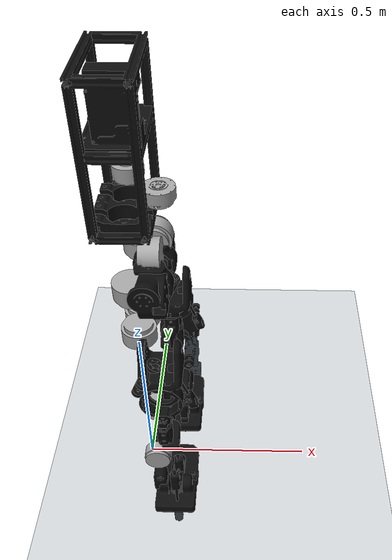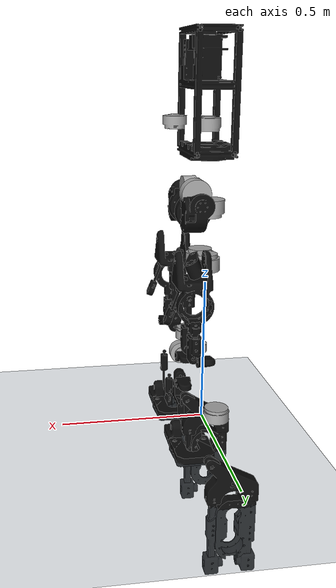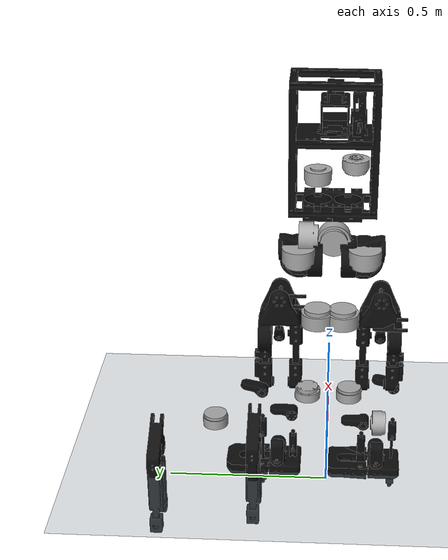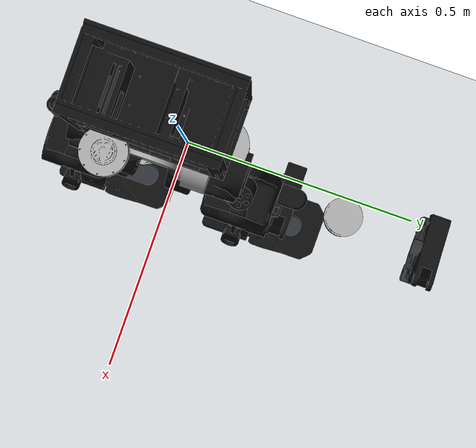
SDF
<?xml version="1.0"?>
<sdf version="1.9">
  <world name="robonex_world">
    <physics name="1ms" type="dart">
      <max_step_size>0.001</max_step_size>
      <real_time_factor>1.0</real_time_factor>
    </physics>
    <plugin filename="ignition-gazebo-physics-system" name="ignition::gazebo::systems::Physics"/>
    <plugin filename="ignition-gazebo-user-commands-system" name="ignition::gazebo::systems::UserCommands"/>
    <plugin filename="ignition-gazebo-scene-broadcaster-system" name="ignition::gazebo::systems::SceneBroadcaster"/>
    <plugin filename="ignition-gazebo-contact-system" name="ignition::gazebo::systems::Contact"/>
    <plugin filename="ignition-gazebo-imu-system" name="ignition::gazebo::systems::Imu"/>
    <gravity>0 0 -9.81</gravity>

    <light type="directional" name="sun">
      <pose>0 0 10 0 0 0</pose>
      <direction>-0.3 0.2 -0.9</direction>
      <diffuse>1 1 1 1</diffuse>
      <specular>0.2 0.2 0.2 1</specular>
      <cast_shadows>true</cast_shadows>
    </light>

    <model name="ground_plane">
      <static>true</static>
      <link name="link">
        <collision name="collision">
          <geometry><plane><normal>0 0 1</normal><size>50 50</size></plane></geometry>
          <surface><friction><ode>
            <mu>0.6</mu><mu2>0.6</mu2>
          </ode></friction></surface>
        </collision>
        <visual name="visual">
          <geometry><plane><normal>0 0 1</normal><size>50 50</size></plane></geometry>
          <material>
            <ambient>0.4 0.45 0.5 1</ambient>
            <diffuse>0.5 0.55 0.6 1</diffuse>
          </material>
        </visual>
      </link>
    </model>

  <model name="robonex">
    <pose>0 0 1.0789 0 0 0</pose>
    <self_collide>false</self_collide>

    <link name="base_link">
      <inertial>
        <pose>0.032843 0.000297 -0.045593 0 0 0</pose>
        <mass>6.80147</mass>
        <inertia>
          <ixx>0.17694424</ixx>
          <ixy>-5.475e-05</ixy>
          <ixz>0.01914405</ixz>
          <iyy>0.14872054</iyy>
          <iyz>-0.00012648</iyz>
          <izz>0.08710167</izz>
        </inertia>
      </inertial>
      <visual name="base_link_visual_0">
        <pose>0 0 0 0 0 0</pose>
        <geometry><mesh>
          <uri>../meshes/base_link.stl</uri>
          <scale>0.001 0.001 0.001</scale>
        </mesh></geometry>
        <material>
          <ambient>0.025 0.025 0.025 1</ambient>
          <diffuse>0.05 0.05 0.05 1</diffuse>
          <specular>0.1 0.1 0.1 1</specular>
        </material>
      </visual>
      <visual name="base_link_visual_1">
        <pose>0.060424 -0.05 -0.17975 -3.14159 0 -1.65806</pose>
        <geometry><mesh>
          <uri>../meshes/rs02_r_hip_yaw.stl</uri>
          <scale>0.001 0.001 0.001</scale>
        </mesh></geometry>
        <material>
          <ambient>0.3235 0.3235 0.3235 1</ambient>
          <diffuse>0.647 0.647 0.647 1</diffuse>
          <specular>0.1 0.1 0.1 1</specular>
        </material>
      </visual>
      <visual name="base_link_visual_2">
        <pose>0.060424 0.05 -0.17975 -3.14159 0 -1.65806</pose>
        <geometry><mesh>
          <uri>../meshes/rs02_l_hip_yaw.stl</uri>
          <scale>0.001 0.001 0.001</scale>
        </mesh></geometry>
        <material>
          <ambient>0.3235 0.3235 0.3235 1</ambient>
          <diffuse>0.647 0.647 0.647 1</diffuse>
          <specular>0.1 0.1 0.1 1</specular>
        </material>
      </visual>
      <collision name="base_link_collision">
        <pose>0 0 -0.0005 0 0 0</pose>
        <geometry><box><size>0.2608 0.35 0.4039</size></box></geometry>
        <surface><friction><ode>
          <mu>1</mu><mu2>1</mu2>
        </ode></friction></surface>
      </collision>
      <sensor name="imu" type="imu">
        <always_on>1</always_on>
        <update_rate>200</update_rate>
        <topic>/robonex/imu</topic>
        <pose>0 0 0 0 0 0</pose>
      </sensor>
    </link>

    <link name="l_hip_yaw_link">
      <pose relative_to="base_link">0.060424 0.05 -0.20245 0 0 0</pose>
      <inertial>
        <pose>-3.8e-05 0.023069 -0.059394 0 0 0</pose>
        <mass>0.9768</mass>
        <inertia>
          <ixx>0.00108483</ixx>
          <ixy>-7.1e-07</ixy>
          <ixz>-7.1e-07</ixz>
          <iyy>0.00144231</iyy>
          <iyz>2.234e-05</iyz>
          <izz>0.001013</izz>
        </inertia>
      </inertial>
      <visual name="l_hip_yaw_link_visual_0">
        <pose>2e-06 0.0001 -0.059 0 0 3.14159</pose>
        <geometry><mesh>
          <uri>../meshes/l_hip_yaw_link.stl</uri>
          <scale>0.001 0.001 0.001</scale>
        </mesh></geometry>
        <material>
          <ambient>0.025 0.025 0.025 1</ambient>
          <diffuse>0.05 0.05 0.05 1</diffuse>
          <specular>0.1 0.1 0.1 1</specular>
        </material>
      </visual>
      <visual name="l_hip_yaw_link_visual_1">
        <pose>2e-06 0.0194 -0.06001 0 -1.5708 -1.5708</pose>
        <geometry><mesh>
          <uri>../meshes/rs03_l_hip_pitch.stl</uri>
          <scale>0.001 0.001 0.001</scale>
        </mesh></geometry>
        <material>
          <ambient>0.3235 0.3235 0.3235 1</ambient>
          <diffuse>0.647 0.647 0.647 1</diffuse>
          <specular>0.1 0.1 0.1 1</specular>
        </material>
      </visual>
      <collision name="l_hip_yaw_link_collision">
        <pose>0 0.0013 -0.059 0 0 0</pose>
        <geometry><box><size>0.115 0.0927 0.118</size></box></geometry>
        <surface><friction><ode>
          <mu>1</mu><mu2>1</mu2>
        </ode></friction></surface>
      </collision>
    </link>

    <link name="r_hip_yaw_link">
      <pose relative_to="base_link">0.060424 -0.05 -0.20245 0 0 0</pose>
      <inertial>
        <pose>3.8e-05 -0.023069 -0.059394 0 0 0</pose>
        <mass>0.9768</mass>
        <inertia>
          <ixx>0.00108483</ixx>
          <ixy>-7.1e-07</ixy>
          <ixz>7.1e-07</ixz>
          <iyy>0.00144231</iyy>
          <iyz>-2.234e-05</iyz>
          <izz>0.001013</izz>
        </inertia>
      </inertial>
      <visual name="r_hip_yaw_link_visual_0">
        <pose>-2e-06 -0.0001 -0.059 0 0 0</pose>
        <geometry><mesh>
          <uri>../meshes/r_hip_yaw_link.stl</uri>
          <scale>0.001 0.001 0.001</scale>
        </mesh></geometry>
        <material>
          <ambient>0.025 0.025 0.025 1</ambient>
          <diffuse>0.05 0.05 0.05 1</diffuse>
          <specular>0.1 0.1 0.1 1</specular>
        </material>
      </visual>
      <visual name="r_hip_yaw_link_visual_1">
        <pose>-2e-06 -0.0194 -0.06001 0 -1.5708 1.5708</pose>
        <geometry><mesh>
          <uri>../meshes/rs03_r_hip_pitch.stl</uri>
          <scale>0.001 0.001 0.001</scale>
        </mesh></geometry>
        <material>
          <ambient>0.3235 0.3235 0.3235 1</ambient>
          <diffuse>0.647 0.647 0.647 1</diffuse>
          <specular>0.1 0.1 0.1 1</specular>
        </material>
      </visual>
      <collision name="r_hip_yaw_link_collision">
        <pose>0 -0.0013 -0.059 0 0 0</pose>
        <geometry><box><size>0.115 0.0927 0.118</size></box></geometry>
        <surface><friction><ode>
          <mu>1</mu><mu2>1</mu2>
        </ode></friction></surface>
      </collision>
    </link>

    <link name="l_hip_pitch_link">
      <pose relative_to="l_hip_yaw_link">1e-06 0.0477 -0.0605 0 0 0</pose>
      <inertial>
        <pose>-0.003785 0.060976 -0.032577 0 0 0</pose>
        <mass>1.04436</mass>
        <inertia>
          <ixx>0.00161401</ixx>
          <ixy>9.18e-06</ixy>
          <ixz>-6.72e-06</ixz>
          <iyy>0.00123883</iyy>
          <iyz>6.937e-05</iyz>
          <izz>0.00118137</izz>
        </inertia>
      </inertial>
      <visual name="l_hip_pitch_link_visual_0">
        <pose>-0.00455 0.0599 -0.02575 0 0 3.14159</pose>
        <geometry><mesh>
          <uri>../meshes/l_hip_pitch_link.stl</uri>
          <scale>0.001 0.001 0.001</scale>
        </mesh></geometry>
        <material>
          <ambient>0.025 0.025 0.025 1</ambient>
          <diffuse>0.05 0.05 0.05 1</diffuse>
          <specular>0.1 0.1 0.1 1</specular>
        </material>
      </visual>
      <visual name="l_hip_pitch_link_visual_1">
        <pose>-0.0058 0.0623 -0.03351 0 -1.5708 -3.14159</pose>
        <geometry><mesh>
          <uri>../meshes/rs03_l_hip_roll.stl</uri>
          <scale>0.001 0.001 0.001</scale>
        </mesh></geometry>
        <material>
          <ambient>0.3235 0.3235 0.3235 1</ambient>
          <diffuse>0.647 0.647 0.647 1</diffuse>
          <specular>0.1 0.1 0.1 1</specular>
        </material>
      </visual>
      <collision name="l_hip_pitch_link_collision">
        <pose>-0.0046 0.0599 -0.0258 0 0 0</pose>
        <geometry><box><size>0.0891 0.1198 0.1315</size></box></geometry>
        <surface><friction><ode>
          <mu>1</mu><mu2>1</mu2>
        </ode></friction></surface>
      </collision>
    </link>

    <link name="r_hip_pitch_link">
      <pose relative_to="r_hip_yaw_link">-1e-06 -0.0477 -0.0605 0 0 0</pose>
      <inertial>
        <pose>-0.003774 -0.061283 -0.032564 0 0 0</pose>
        <mass>1.04436</mass>
        <inertia>
          <ixx>0.00161565</ixx>
          <ixy>-8.22e-06</ixy>
          <ixz>-6.63e-06</ixz>
          <iyy>0.00123875</iyy>
          <iyz>-6.896e-05</iyz>
          <izz>0.00118221</izz>
        </inertia>
      </inertial>
      <visual name="r_hip_pitch_link_visual_0">
        <pose>-0.00455 -0.0601 -0.02575 0 0 -3.14159</pose>
        <geometry><mesh>
          <uri>../meshes/r_hip_pitch_link.stl</uri>
          <scale>0.001 0.001 0.001</scale>
        </mesh></geometry>
        <material>
          <ambient>0.025 0.025 0.025 1</ambient>
          <diffuse>0.05 0.05 0.05 1</diffuse>
          <specular>0.1 0.1 0.1 1</specular>
        </material>
      </visual>
      <visual name="r_hip_pitch_link_visual_1">
        <pose>-0.0058 -0.0627 -0.03351 0 -1.5708 -3.14159</pose>
        <geometry><mesh>
          <uri>../meshes/rs03_r_hip_roll.stl</uri>
          <scale>0.001 0.001 0.001</scale>
        </mesh></geometry>
        <material>
          <ambient>0.3235 0.3235 0.3235 1</ambient>
          <diffuse>0.647 0.647 0.647 1</diffuse>
          <specular>0.1 0.1 0.1 1</specular>
        </material>
      </visual>
      <collision name="r_hip_pitch_link_collision">
        <pose>-0.0046 -0.0601 -0.0257 0 0 0</pose>
        <geometry><box><size>0.0891 0.1202 0.1315</size></box></geometry>
        <surface><friction><ode>
          <mu>1</mu><mu2>1</mu2>
        </ode></friction></surface>
      </collision>
    </link>

    <link name="l_hip_roll_link">
      <pose relative_to="l_hip_pitch_link">0.0225 0.0623 -0.034 0 0 0</pose>
      <inertial>
        <pose>-0.034473 -0.032586 -0.198268 0 0 0</pose>
        <mass>1.71574</mass>
        <inertia>
          <ixx>0.01832064</ixx>
          <ixy>-1.851e-05</ixy>
          <ixz>-6.908e-05</ixz>
          <iyy>0.01711211</iyy>
          <iyz>-0.00294612</iyz>
          <izz>0.00412151</izz>
        </inertia>
      </inertial>
      <visual name="l_hip_roll_link_visual_0">
        <pose>-0.0348 -0.007 -0.16 0 0 -3.14159</pose>
        <geometry><mesh>
          <uri>../meshes/l_hip_roll_link.stl</uri>
          <scale>0.001 0.001 0.001</scale>
        </mesh></geometry>
        <material>
          <ambient>0.025 0.025 0.025 1</ambient>
          <diffuse>0.05 0.05 0.05 1</diffuse>
          <specular>0.1 0.1 0.1 1</specular>
        </material>
      </visual>
      <visual name="l_hip_roll_link_visual_1">
        <pose>-0.03431 -0.0603 -0.255 -1.5708 0 0</pose>
        <geometry><mesh>
          <uri>../meshes/rs03_l_knee.stl</uri>
          <scale>0.001 0.001 0.001</scale>
        </mesh></geometry>
        <material>
          <ambient>0.3235 0.3235 0.3235 1</ambient>
          <diffuse>0.647 0.647 0.647 1</diffuse>
          <specular>0.1 0.1 0.1 1</specular>
        </material>
      </visual>
      <collision name="l_hip_roll_link_collision">
        <pose>-0.0348 -0.011 -0.16 0 0 0</pose>
        <geometry><box><size>0.1147 0.1553 0.3999</size></box></geometry>
        <surface><friction><ode>
          <mu>1</mu><mu2>1</mu2>
        </ode></friction></surface>
      </collision>
    </link>

    <link name="r_hip_roll_link">
      <pose relative_to="r_hip_pitch_link">0.0225 -0.0627 -0.034 0 0 0</pose>
      <inertial>
        <pose>-0.034561 0.0326 -0.198312 0 0 0</pose>
        <mass>1.71574</mass>
        <inertia>
          <ixx>0.01832691</ixx>
          <ixy>2.205e-05</ixy>
          <ixz>-7.902e-05</ixz>
          <iyy>0.01712084</iyy>
          <iyz>0.00294902</iyz>
          <izz>0.00411921</izz>
        </inertia>
      </inertial>
      <visual name="r_hip_roll_link_visual_0">
        <pose>-0.0348 0.007 -0.16 0 0 -3.14159</pose>
        <geometry><mesh>
          <uri>../meshes/r_hip_roll_link.stl</uri>
          <scale>0.001 0.001 0.001</scale>
        </mesh></geometry>
        <material>
          <ambient>0.025 0.025 0.025 1</ambient>
          <diffuse>0.05 0.05 0.05 1</diffuse>
          <specular>0.1 0.1 0.1 1</specular>
        </material>
      </visual>
      <visual name="r_hip_roll_link_visual_1">
        <pose>-0.03431 0.0603 -0.255 1.5708 0 0</pose>
        <geometry><mesh>
          <uri>../meshes/rs03_r_knee.stl</uri>
          <scale>0.001 0.001 0.001</scale>
        </mesh></geometry>
        <material>
          <ambient>0.3235 0.3235 0.3235 1</ambient>
          <diffuse>0.647 0.647 0.647 1</diffuse>
          <specular>0.1 0.1 0.1 1</specular>
        </material>
      </visual>
      <collision name="r_hip_roll_link_collision">
        <pose>-0.0348 0.011 -0.16 0 0 0</pose>
        <geometry><box><size>0.1147 0.1553 0.3999</size></box></geometry>
        <surface><friction><ode>
          <mu>1</mu><mu2>1</mu2>
        </ode></friction></surface>
      </collision>
    </link>

    <link name="l_knee_crank_link">
      <pose relative_to="l_hip_roll_link">-0.0348 -0.032 -0.255 0 0 0</pose>
      <inertial>
        <pose>0.013738 0.029543 0.030625 0 0 0</pose>
        <mass>0.09538</mass>
        <inertia>
          <ixx>0.0001081</ixx>
          <ixy>-2.41e-06</ixy>
          <ixz>-3.391e-05</ixz>
          <iyy>0.00011887</iyy>
          <iyz>-5.38e-06</iyz>
          <izz>4.67e-05</izz>
        </inertia>
      </inertial>
      <visual name="l_knee_crank_link_visual_0">
        <pose>0.019334 0.026 0.041464 1.13446 0 -1.5708</pose>
        <geometry><mesh>
          <uri>../meshes/l_knee_crank_link.stl</uri>
          <scale>0.001 0.001 0.001</scale>
        </mesh></geometry>
        <material>
          <ambient>0.025 0.025 0.025 1</ambient>
          <diffuse>0.05 0.05 0.05 1</diffuse>
          <specular>0.1 0.1 0.1 1</specular>
        </material>
      </visual>
    </link>

    <link name="r_knee_crank_link">
      <pose relative_to="r_hip_roll_link">-0.0348 0.032 -0.255 0 0 0</pose>
      <inertial>
        <pose>0.013738 -0.029543 0.030625 0 0 0</pose>
        <mass>0.09538</mass>
        <inertia>
          <ixx>0.0001081</ixx>
          <ixy>2.41e-06</ixy>
          <ixz>-3.391e-05</ixz>
          <iyy>0.00011887</iyy>
          <iyz>5.38e-06</iyz>
          <izz>4.67e-05</izz>
        </inertia>
      </inertial>
      <visual name="r_knee_crank_link_visual_0">
        <pose>0.019335 -0.026 0.041464 1.13446 0 -1.5708</pose>
        <geometry><mesh>
          <uri>../meshes/r_knee_crank_link.stl</uri>
          <scale>0.001 0.001 0.001</scale>
        </mesh></geometry>
        <material>
          <ambient>0.025 0.025 0.025 1</ambient>
          <diffuse>0.05 0.05 0.05 1</diffuse>
          <specular>0.1 0.1 0.1 1</specular>
        </material>
      </visual>
    </link>

    <link name="l_knee_coupler_link">
      <pose relative_to="l_knee_crank_link">0.042262 0.021 0.090631 0 0 0</pose>
      <inertial>
        <pose>0.023792 0.01 -0.062632 0 0 0</pose>
        <mass>0.0579</mass>
        <inertia>
          <ixx>0.00016138</ixx>
          <ixy>0</ixy>
          <ixz>5.899e-05</ixz>
          <iyy>0.00018632</iyy>
          <iyz>0</iyz>
          <izz>2.851e-05</izz>
        </inertia>
      </inertial>
      <visual name="l_knee_coupler_link_visual_0">
        <pose>0.023792 0.01 -0.062633 0.363028 0 -1.5708</pose>
        <geometry><mesh>
          <uri>../meshes/l_knee_coupler_link.stl</uri>
          <scale>0.001 0.001 0.001</scale>
        </mesh></geometry>
        <material>
          <ambient>0.025 0.025 0.025 1</ambient>
          <diffuse>0.05 0.05 0.05 1</diffuse>
          <specular>0.1 0.1 0.1 1</specular>
        </material>
      </visual>
    </link>

    <link name="r_knee_coupler_link">
      <pose relative_to="r_knee_crank_link">0.042262 -0.021 0.090631 0 0 0</pose>
      <inertial>
        <pose>0.023792 -0.01 -0.062632 0 0 0</pose>
        <mass>0.0579</mass>
        <inertia>
          <ixx>0.00016138</ixx>
          <ixy>0</ixy>
          <ixz>5.899e-05</ixz>
          <iyy>0.00018632</iyy>
          <iyz>0</iyz>
          <izz>2.851e-05</izz>
        </inertia>
      </inertial>
      <visual name="r_knee_coupler_link_visual_0">
        <pose>0.023792 -0.01 -0.062633 -0.363028 0 1.5708</pose>
        <geometry><mesh>
          <uri>../meshes/r_knee_coupler_link.stl</uri>
          <scale>0.001 0.001 0.001</scale>
        </mesh></geometry>
        <material>
          <ambient>0.025 0.025 0.025 1</ambient>
          <diffuse>0.05 0.05 0.05 1</diffuse>
          <specular>0.1 0.1 0.1 1</specular>
        </material>
      </visual>
    </link>

    <link name="l_knee_link">
      <pose relative_to="l_hip_roll_link">-0.0348 -0.0255 -0.34 0 0 0</pose>
      <inertial>
        <pose>0.001621 0.025016 -0.172019 0 0 0</pose>
        <mass>1.71687</mass>
        <inertia>
          <ixx>0.01717778</ixx>
          <ixy>1.7e-07</ixy>
          <ixz>-0.00118827</ixz>
          <iyy>0.01952815</iyy>
          <iyz>-1.549e-05</iyz>
          <izz>0.00292332</izz>
        </inertia>
      </inertial>
      <visual name="l_knee_link_visual_0">
        <pose>0 0.42 -0.3696 0 0 0</pose>
        <geometry><mesh>
          <uri>../meshes/l_knee_link.stl</uri>
          <scale>0.001 0.001 0.001</scale>
        </mesh></geometry>
        <material>
          <ambient>0.025 0.025 0.025 1</ambient>
          <diffuse>0.05 0.05 0.05 1</diffuse>
          <specular>0.1 0.1 0.1 1</specular>
        </material>
      </visual>
      <visual name="l_knee_link_visual_1">
        <pose>0 0.0252 -0.1445 -1.5708 0 0</pose>
        <geometry><mesh>
          <uri>../meshes/rs02_l_ankle_a.stl</uri>
          <scale>0.001 0.001 0.001</scale>
        </mesh></geometry>
        <material>
          <ambient>0.3235 0.3235 0.3235 1</ambient>
          <diffuse>0.647 0.647 0.647 1</diffuse>
          <specular>0.1 0.1 0.1 1</specular>
        </material>
      </visual>
      <visual name="l_knee_link_visual_2">
        <pose>0 0.0248 -0.2555 1.5708 0 0</pose>
        <geometry><mesh>
          <uri>../meshes/rs02_l_ankle_b.stl</uri>
          <scale>0.001 0.001 0.001</scale>
        </mesh></geometry>
        <material>
          <ambient>0.3235 0.3235 0.3235 1</ambient>
          <diffuse>0.647 0.647 0.647 1</diffuse>
          <specular>0.1 0.1 0.1 1</specular>
        </material>
      </visual>
      <collision name="l_knee_link_collision">
        <pose>0.0027 0.025 -0.1525 0 0 0</pose>
        <geometry><box><size>0.2044 0.05 0.435</size></box></geometry>
        <surface><friction><ode>
          <mu>1</mu><mu2>1</mu2>
        </ode></friction></surface>
      </collision>
    </link>

    <link name="r_knee_link">
      <pose relative_to="r_hip_roll_link">-0.0348 0.0255 -0.34 0 0 0</pose>
      <inertial>
        <pose>0.001621 -0.025013 -0.172019 0 0 0</pose>
        <mass>1.71687</mass>
        <inertia>
          <ixx>0.01717476</ixx>
          <ixy>1.7e-06</ixy>
          <ixz>-0.00118827</ixz>
          <iyy>0.01952513</iyy>
          <iyz>2.224e-05</iyz>
          <izz>0.00292332</izz>
        </inertia>
      </inertial>
      <visual name="r_knee_link_visual_0">
        <pose>0 0.37 -0.32 0 0 0</pose>
        <geometry><mesh>
          <uri>../meshes/r_knee_link.stl</uri>
          <scale>0.001 0.001 0.001</scale>
        </mesh></geometry>
        <material>
          <ambient>0.025 0.025 0.025 1</ambient>
          <diffuse>0.05 0.05 0.05 1</diffuse>
          <specular>0.1 0.1 0.1 1</specular>
        </material>
      </visual>
      <visual name="r_knee_link_visual_1">
        <pose>0 -0.0252 -0.1445 1.5708 0 0</pose>
        <geometry><mesh>
          <uri>../meshes/rs02_r_ankle_a.stl</uri>
          <scale>0.001 0.001 0.001</scale>
        </mesh></geometry>
        <material>
          <ambient>0.3235 0.3235 0.3235 1</ambient>
          <diffuse>0.647 0.647 0.647 1</diffuse>
          <specular>0.1 0.1 0.1 1</specular>
        </material>
      </visual>
      <visual name="r_knee_link_visual_2">
        <pose>0 -0.0248 -0.2555 -1.5708 0 0</pose>
        <geometry><mesh>
          <uri>../meshes/rs02_r_ankle_b.stl</uri>
          <scale>0.001 0.001 0.001</scale>
        </mesh></geometry>
        <material>
          <ambient>0.3235 0.3235 0.3235 1</ambient>
          <diffuse>0.647 0.647 0.647 1</diffuse>
          <specular>0.1 0.1 0.1 1</specular>
        </material>
      </visual>
      <collision name="r_knee_link_collision">
        <pose>0.0027 -0.025 -0.1525 0 0 0</pose>
        <geometry><box><size>0.2044 0.05 0.435</size></box></geometry>
        <surface><friction><ode>
          <mu>1</mu><mu2>1</mu2>
        </ode></friction></surface>
      </collision>
    </link>

    <link name="l_ankle_crank_link_a">
      <pose relative_to="l_knee_link">0 0.0479 -0.1445 0 0 0</pose>
      <inertial>
        <pose>0.021493 0.024513 0.00427 0 0 0</pose>
        <mass>0.08456</mass>
        <inertia>
          <ixx>1.958e-05</ixx>
          <ixy>-3.25e-06</ixy>
          <ixz>-6.24e-06</ixz>
          <iyy>5.234e-05</iyy>
          <iyz>-6.5e-07</iyz>
          <izz>5.951e-05</izz>
        </inertia>
      </inertial>
      <visual name="l_ankle_crank_link_a_visual_0">
        <pose>0.026 0.0234 0 0 0 1.5708</pose>
        <geometry><mesh>
          <uri>../meshes/l_ankle_crank_link_a.stl</uri>
          <scale>0.001 0.001 0.001</scale>
        </mesh></geometry>
        <material>
          <ambient>0.025 0.025 0.025 1</ambient>
          <diffuse>0.05 0.05 0.05 1</diffuse>
          <specular>0.1 0.1 0.1 1</specular>
        </material>
      </visual>
    </link>

    <link name="l_ankle_crank_link_b">
      <pose relative_to="l_knee_link">0 0.0021 -0.2555 0 0 0</pose>
      <inertial>
        <pose>0.021493 -0.024513 0.00427 0 0 0</pose>
        <mass>0.08456</mass>
        <inertia>
          <ixx>1.958e-05</ixx>
          <ixy>3.25e-06</ixy>
          <ixz>-6.24e-06</ixz>
          <iyy>5.234e-05</iyy>
          <iyz>6.5e-07</iyz>
          <izz>5.951e-05</izz>
        </inertia>
      </inertial>
      <visual name="l_ankle_crank_link_b_visual_0">
        <pose>0.026 -0.0224 -1e-06 0 0 1.5708</pose>
        <geometry><mesh>
          <uri>../meshes/l_ankle_crank_link_b.stl</uri>
          <scale>0.001 0.001 0.001</scale>
        </mesh></geometry>
        <material>
          <ambient>0.025 0.025 0.025 1</ambient>
          <diffuse>0.05 0.05 0.05 1</diffuse>
          <specular>0.1 0.1 0.1 1</specular>
        </material>
      </visual>
    </link>

    <link name="r_ankle_crank_link_a">
      <pose relative_to="r_knee_link">0 -0.0021 -0.2555 0 0 0</pose>
      <inertial>
        <pose>0.021493 0.024513 0.00427 0 0 0</pose>
        <mass>0.08456</mass>
        <inertia>
          <ixx>1.958e-05</ixx>
          <ixy>-3.25e-06</ixy>
          <ixz>-6.24e-06</ixz>
          <iyy>5.234e-05</iyy>
          <iyz>-6.5e-07</iyz>
          <izz>5.951e-05</izz>
        </inertia>
      </inertial>
      <visual name="r_ankle_crank_link_a_visual_0">
        <pose>0.026 0.0234 0 0 0 1.5708</pose>
        <geometry><mesh>
          <uri>../meshes/r_ankle_crank_link_a.stl</uri>
          <scale>0.001 0.001 0.001</scale>
        </mesh></geometry>
        <material>
          <ambient>0.025 0.025 0.025 1</ambient>
          <diffuse>0.05 0.05 0.05 1</diffuse>
          <specular>0.1 0.1 0.1 1</specular>
        </material>
      </visual>
    </link>

    <link name="r_ankle_crank_link_b">
      <pose relative_to="r_knee_link">0 -0.0479 -0.1445 0 0 0</pose>
      <inertial>
        <pose>0.021493 -0.024513 0.00427 0 0 0</pose>
        <mass>0.08456</mass>
        <inertia>
          <ixx>1.958e-05</ixx>
          <ixy>3.25e-06</ixy>
          <ixz>-6.24e-06</ixz>
          <iyy>5.234e-05</iyy>
          <iyz>6.5e-07</iyz>
          <izz>5.951e-05</izz>
        </inertia>
      </inertial>
      <visual name="r_ankle_crank_link_b_visual_0">
        <pose>0.026 -0.0224 -1e-06 0 0 1.5708</pose>
        <geometry><mesh>
          <uri>../meshes/r_ankle_crank_link_b.stl</uri>
          <scale>0.001 0.001 0.001</scale>
        </mesh></geometry>
        <material>
          <ambient>0.025 0.025 0.025 1</ambient>
          <diffuse>0.05 0.05 0.05 1</diffuse>
          <specular>0.1 0.1 0.1 1</specular>
        </material>
      </visual>
    </link>

    <link name="l_ankle_coupler_link_a">
      <pose relative_to="l_ankle_crank_link_b">0.05 -0.0263 0 0 0 0</pose>
      <inertial>
        <pose>0 0 -0.0735 0 0 0</pose>
        <mass>0.0741</mass>
        <inertia>
          <ixx>0.0001211</ixx>
          <ixy>0</ixy>
          <ixz>0</ixz>
          <iyy>0.00012069</iyy>
          <iyz>0</iyz>
          <izz>6.8e-06</izz>
        </inertia>
      </inertial>
      <visual name="l_ankle_coupler_link_a_visual_0">
        <pose>0 0 -0.0735 0 0 0</pose>
        <geometry><mesh>
          <uri>../meshes/l_ankle_coupler_link_a.stl</uri>
          <scale>0.001 0.001 0.001</scale>
        </mesh></geometry>
        <material>
          <ambient>0.025 0.025 0.025 1</ambient>
          <diffuse>0.05 0.05 0.05 1</diffuse>
          <specular>0.1 0.1 0.1 1</specular>
        </material>
      </visual>
    </link>

    <link name="l_ankle_coupler_link_b">
      <pose relative_to="l_ankle_crank_link_a">0.05 0.0263 0 0 0 0</pose>
      <inertial>
        <pose>0 0 -0.129 0 0 0</pose>
        <mass>0.08512</mass>
        <inertia>
          <ixx>0.00066004</ixx>
          <ixy>0</ixy>
          <ixz>0</ixz>
          <iyy>0.00065964</iyy>
          <iyz>0</iyz>
          <izz>7.38e-06</izz>
        </inertia>
      </inertial>
      <visual name="l_ankle_coupler_link_b_visual_0">
        <pose>0 0 -0.129 0 0 0</pose>
        <geometry><mesh>
          <uri>../meshes/l_ankle_coupler_link_b.stl</uri>
          <scale>0.001 0.001 0.001</scale>
        </mesh></geometry>
        <material>
          <ambient>0.025 0.025 0.025 1</ambient>
          <diffuse>0.05 0.05 0.05 1</diffuse>
          <specular>0.1 0.1 0.1 1</specular>
        </material>
      </visual>
    </link>

    <link name="r_ankle_coupler_link_a">
      <pose relative_to="r_ankle_crank_link_a">0.05 0.0263 0 0 0 0</pose>
      <inertial>
        <pose>0 0 -0.0735 0 0 0</pose>
        <mass>0.0741</mass>
        <inertia>
          <ixx>0.0001211</ixx>
          <ixy>0</ixy>
          <ixz>0</ixz>
          <iyy>0.00012069</iyy>
          <iyz>0</iyz>
          <izz>6.8e-06</izz>
        </inertia>
      </inertial>
      <visual name="r_ankle_coupler_link_a_visual_0">
        <pose>0 0 -0.0735 0 0 0</pose>
        <geometry><mesh>
          <uri>../meshes/r_ankle_coupler_link_a.stl</uri>
          <scale>0.001 0.001 0.001</scale>
        </mesh></geometry>
        <material>
          <ambient>0.025 0.025 0.025 1</ambient>
          <diffuse>0.05 0.05 0.05 1</diffuse>
          <specular>0.1 0.1 0.1 1</specular>
        </material>
      </visual>
    </link>

    <link name="r_ankle_coupler_link_b">
      <pose relative_to="r_ankle_crank_link_b">0.05 -0.0263 0 0 0 0</pose>
      <inertial>
        <pose>0 0 -0.129 0 0 0</pose>
        <mass>0.08512</mass>
        <inertia>
          <ixx>0.00066004</ixx>
          <ixy>0</ixy>
          <ixz>0</ixz>
          <iyy>0.00065964</iyy>
          <iyz>0</iyz>
          <izz>7.38e-06</izz>
        </inertia>
      </inertial>
      <visual name="r_ankle_coupler_link_b_visual_0">
        <pose>0 0 -0.129 0 0 0</pose>
        <geometry><mesh>
          <uri>../meshes/r_ankle_coupler_link_b.stl</uri>
          <scale>0.001 0.001 0.001</scale>
        </mesh></geometry>
        <material>
          <ambient>0.025 0.025 0.025 1</ambient>
          <diffuse>0.05 0.05 0.05 1</diffuse>
          <specular>0.1 0.1 0.1 1</specular>
        </material>
      </visual>
    </link>

    <link name="l_ankle_link">
      <pose relative_to="l_knee_link">0.02 0.025 -0.3265 0 0 0</pose>
      <inertial>
        <pose>-0.020126 0 -0.025484 0 0 0</pose>
        <mass>0.13119</mass>
        <inertia>
          <ixx>8.904e-05</ixx>
          <ixy>0</ixy>
          <ixz>4.2e-07</ixz>
          <iyy>8.901e-05</iyy>
          <iyz>0</iyz>
          <izz>3.296e-05</izz>
        </inertia>
      </inertial>
      <visual name="l_ankle_link_visual_0">
        <pose>-0.02 0 -0.025 0 0 -1.5708</pose>
        <geometry><mesh>
          <uri>../meshes/l_ankle_link.stl</uri>
          <scale>0.001 0.001 0.001</scale>
        </mesh></geometry>
        <material>
          <ambient>0.025 0.025 0.025 1</ambient>
          <diffuse>0.05 0.05 0.05 1</diffuse>
          <specular>0.1 0.1 0.1 1</specular>
        </material>
      </visual>
      <collision name="l_ankle_link_collision">
        <pose>-0.02 0 -0.025 0 0 0</pose>
        <geometry><box><size>0.04 0.04 0.09</size></box></geometry>
        <surface><friction><ode>
          <mu>1</mu><mu2>1</mu2>
        </ode></friction></surface>
      </collision>
    </link>

    <link name="r_ankle_link">
      <pose relative_to="r_knee_link">0.02 -0.025 -0.3265 0 0 0</pose>
      <inertial>
        <pose>-0.020126 0 -0.025484 0 0 0</pose>
        <mass>0.13119</mass>
        <inertia>
          <ixx>8.904e-05</ixx>
          <ixy>0</ixy>
          <ixz>4.2e-07</ixz>
          <iyy>8.901e-05</iyy>
          <iyz>0</iyz>
          <izz>3.296e-05</izz>
        </inertia>
      </inertial>
      <visual name="r_ankle_link_visual_0">
        <pose>-0.02 0 -0.025 0 0 -1.5708</pose>
        <geometry><mesh>
          <uri>../meshes/r_ankle_link.stl</uri>
          <scale>0.001 0.001 0.001</scale>
        </mesh></geometry>
        <material>
          <ambient>0.025 0.025 0.025 1</ambient>
          <diffuse>0.05 0.05 0.05 1</diffuse>
          <specular>0.1 0.1 0.1 1</specular>
        </material>
      </visual>
      <collision name="r_ankle_link_collision">
        <pose>-0.02 0 -0.025 0 0 0</pose>
        <geometry><box><size>0.04 0.04 0.09</size></box></geometry>
        <surface><friction><ode>
          <mu>1</mu><mu2>1</mu2>
        </ode></friction></surface>
      </collision>
    </link>

    <link name="l_foot">
      <pose relative_to="l_ankle_link">-0.02 -0.02 -0.05 0 0 0</pose>
      <inertial>
        <pose>0.036405 0.020073 -0.039754 0 0 0</pose>
        <mass>0.78964</mass>
        <inertia>
          <ixx>0.00144137</ixx>
          <ixy>2.38e-06</ixy>
          <ixz>0.0001518</ixz>
          <iyy>0.0041391</iyy>
          <iyz>-2.54e-06</iyz>
          <izz>0.00501965</izz>
        </inertia>
      </inertial>
      <visual name="l_foot_visual_0">
        <pose>0.045 0.02 -0.0202 0 0 1.5708</pose>
        <geometry><mesh>
          <uri>../meshes/l_foot.stl</uri>
          <scale>0.001 0.001 0.001</scale>
        </mesh></geometry>
        <material>
          <ambient>0.025 0.025 0.025 1</ambient>
          <diffuse>0.05 0.05 0.05 1</diffuse>
          <specular>0.1 0.1 0.1 1</specular>
        </material>
      </visual>
      <collision name="l_foot_collision">
        <pose>0.0416 0.02 -0.0554 0 0 0</pose>
        <geometry><box><size>0.2014 0.1176 0.02</size></box></geometry>
        <surface><friction><ode>
          <mu>0.6</mu><mu2>0.6</mu2>
        </ode></friction></surface>
      </collision>
      <self_collide>true</self_collide>
      <sensor name="l_foot_contact" type="contact">
        <always_on>1</always_on>
        <update_rate>200</update_rate>
        <topic>/robonex/l_foot/contact</topic>
        <contact><collision>l_foot_collision</collision></contact>
      </sensor>
    </link>

    <link name="r_foot">
      <pose relative_to="r_ankle_link">-0.02 -0.0215 -0.05 0 0 0</pose>
      <inertial>
        <pose>0.036405 0.021573 -0.039754 0 0 0</pose>
        <mass>0.78964</mass>
        <inertia>
          <ixx>0.00144137</ixx>
          <ixy>2.38e-06</ixy>
          <ixz>0.0001518</ixz>
          <iyy>0.0041391</iyy>
          <iyz>-2.54e-06</iyz>
          <izz>0.00501965</izz>
        </inertia>
      </inertial>
      <visual name="r_foot_visual_0">
        <pose>0.045 0.0215 -0.0202 0 0 1.5708</pose>
        <geometry><mesh>
          <uri>../meshes/r_foot.stl</uri>
          <scale>0.001 0.001 0.001</scale>
        </mesh></geometry>
        <material>
          <ambient>0.025 0.025 0.025 1</ambient>
          <diffuse>0.05 0.05 0.05 1</diffuse>
          <specular>0.1 0.1 0.1 1</specular>
        </material>
      </visual>
      <collision name="r_foot_collision">
        <pose>0.0416 0.0215 -0.0554 0 0 0</pose>
        <geometry><box><size>0.2014 0.1176 0.02</size></box></geometry>
        <surface><friction><ode>
          <mu>0.6</mu><mu2>0.6</mu2>
        </ode></friction></surface>
      </collision>
      <self_collide>true</self_collide>
      <sensor name="r_foot_contact" type="contact">
        <always_on>1</always_on>
        <update_rate>200</update_rate>
        <topic>/robonex/r_foot/contact</topic>
        <contact><collision>r_foot_collision</collision></contact>
      </sensor>
    </link>

    <joint name="l_hip_yaw_joint" type="revolute">
      <parent>base_link</parent>
      <child>l_hip_yaw_link</child>
      <axis>
        <xyz>0 0 1</xyz>
        <limit>
          <lower>-1.658063</lower><upper>1.658063</upper>
          <effort>17</effort><velocity>42.9</velocity>
        </limit>
        <dynamics><damping>0.2</damping><friction>0.1</friction></dynamics>
      </axis>
    </joint>
    <joint name="r_hip_yaw_joint" type="revolute">
      <parent>base_link</parent>
      <child>r_hip_yaw_link</child>
      <axis>
        <xyz>0 0 1</xyz>
        <limit>
          <lower>-1.658063</lower><upper>1.658063</upper>
          <effort>17</effort><velocity>42.9</velocity>
        </limit>
        <dynamics><damping>0.2</damping><friction>0.1</friction></dynamics>
      </axis>
    </joint>
    <joint name="l_hip_pitch_joint" type="revolute">
      <parent>l_hip_yaw_link</parent>
      <child>l_hip_pitch_link</child>
      <axis>
        <xyz>0 -1 0</xyz>
        <limit>
          <lower>-1.745329</lower><upper>1.745329</upper>
          <effort>60</effort><velocity>20.9</velocity>
        </limit>
        <dynamics><damping>0.2</damping><friction>0.2</friction></dynamics>
      </axis>
    </joint>
    <joint name="r_hip_pitch_joint" type="revolute">
      <parent>r_hip_yaw_link</parent>
      <child>r_hip_pitch_link</child>
      <axis>
        <xyz>0 1 0</xyz>
        <limit>
          <lower>-1.745329</lower><upper>1.745329</upper>
          <effort>60</effort><velocity>20.9</velocity>
        </limit>
        <dynamics><damping>0.2</damping><friction>0.2</friction></dynamics>
      </axis>
    </joint>
    <joint name="l_hip_roll_joint" type="revolute">
      <parent>l_hip_pitch_link</parent>
      <child>l_hip_roll_link</child>
      <axis>
        <xyz>-1 0 0</xyz>
        <limit>
          <lower>-2.146755</lower><upper>0.453786</upper>
          <effort>60</effort><velocity>20.9</velocity>
        </limit>
        <dynamics><damping>0.2</damping><friction>0.2</friction></dynamics>
      </axis>
    </joint>
    <joint name="r_hip_roll_joint" type="revolute">
      <parent>r_hip_pitch_link</parent>
      <child>r_hip_roll_link</child>
      <axis>
        <xyz>-1 0 0</xyz>
        <limit>
          <lower>-0.453786</lower><upper>2.146755</upper>
          <effort>60</effort><velocity>20.9</velocity>
        </limit>
        <dynamics><damping>0.2</damping><friction>0.2</friction></dynamics>
      </axis>
    </joint>
    <joint name="l_knee_joint" type="revolute">
      <parent>l_hip_roll_link</parent>
      <child>l_knee_link</child>
      <axis>
        <xyz>0 -1 0</xyz>
        <limit>
          <lower>-1.242674</lower><upper>0.485202</upper>
          <effort>85.1</effort><velocity>14.7</velocity>
        </limit>
        <dynamics><damping>0.2</damping><friction>0.284</friction></dynamics>
      </axis>
    </joint>
    <joint name="r_knee_joint" type="revolute">
      <parent>r_hip_roll_link</parent>
      <child>r_knee_link</child>
      <axis>
        <xyz>0 1 0</xyz>
        <limit>
          <lower>-0.485202</lower><upper>1.242674</upper>
          <effort>85.1</effort><velocity>14.7</velocity>
        </limit>
        <dynamics><damping>0.2</damping><friction>0.284</friction></dynamics>
      </axis>
    </joint>
    <joint name="l_knee_pitch_joint" type="fixed">
      <parent>l_hip_roll_link</parent>
      <child>l_knee_crank_link</child>
    </joint>
    <joint name="r_knee_pitch_joint" type="fixed">
      <parent>r_hip_roll_link</parent>
      <child>r_knee_crank_link</child>
    </joint>
    <joint name="l_knee_coupler_joint_a" type="fixed">
      <parent>l_knee_crank_link</parent>
      <child>l_knee_coupler_link</child>
    </joint>
    <joint name="r_knee_coupler_joint_a" type="fixed">
      <parent>r_knee_crank_link</parent>
      <child>r_knee_coupler_link</child>
    </joint>
    <joint name="l_ankle_upper_joint" type="fixed">
      <parent>l_knee_link</parent>
      <child>l_ankle_crank_link_a</child>
    </joint>
    <joint name="l_ankle_lower_joint" type="fixed">
      <parent>l_knee_link</parent>
      <child>l_ankle_crank_link_b</child>
    </joint>
    <joint name="r_ankle_lower_joint" type="fixed">
      <parent>r_knee_link</parent>
      <child>r_ankle_crank_link_a</child>
    </joint>
    <joint name="r_ankle_upper_joint" type="fixed">
      <parent>r_knee_link</parent>
      <child>r_ankle_crank_link_b</child>
    </joint>
    <joint name="l_ankle_coupler_joint_a" type="fixed">
      <parent>l_ankle_crank_link_b</parent>
      <child>l_ankle_coupler_link_a</child>
    </joint>
    <joint name="l_ankle_coupler_joint_b" type="fixed">
      <parent>l_ankle_crank_link_a</parent>
      <child>l_ankle_coupler_link_b</child>
    </joint>
    <joint name="r_ankle_coupler_joint_a" type="fixed">
      <parent>r_ankle_crank_link_a</parent>
      <child>r_ankle_coupler_link_a</child>
    </joint>
    <joint name="r_ankle_coupler_joint_b" type="fixed">
      <parent>r_ankle_crank_link_b</parent>
      <child>r_ankle_coupler_link_b</child>
    </joint>
    <joint name="l_ankle_roll_joint" type="revolute">
      <parent>l_knee_link</parent>
      <child>l_ankle_link</child>
      <axis>
        <xyz>1 0 0</xyz>
        <limit>
          <lower>-0.520108</lower><upper>0.427606</upper>
          <effort>33.5</effort><velocity>43.5</velocity>
        </limit>
        <dynamics><damping>0.2</damping><friction>0.198</friction></dynamics>
      </axis>
    </joint>
    <joint name="r_ankle_roll_joint" type="revolute">
      <parent>r_knee_link</parent>
      <child>r_ankle_link</child>
      <axis>
        <xyz>1 0 0</xyz>
        <limit>
          <lower>-0.427606</lower><upper>0.520108</upper>
          <effort>33.5</effort><velocity>43.5</velocity>
        </limit>
        <dynamics><damping>0.2</damping><friction>0.198</friction></dynamics>
      </axis>
    </joint>
    <joint name="l_ankle_pitch_joint" type="revolute">
      <parent>l_ankle_link</parent>
      <child>l_foot</child>
      <axis>
        <xyz>0 -1 0</xyz>
        <limit>
          <lower>-0.729548</lower><upper>0.520108</upper>
          <effort>34</effort><velocity>42.9</velocity>
        </limit>
        <dynamics><damping>0.2</damping><friction>0.2</friction></dynamics>
      </axis>
    </joint>
    <joint name="r_ankle_pitch_joint" type="revolute">
      <parent>r_ankle_link</parent>
      <child>r_foot</child>
      <axis>
        <xyz>0 -1 0</xyz>
        <limit>
          <lower>-0.729548</lower><upper>0.520108</upper>
          <effort>34</effort><velocity>42.9</velocity>
        </limit>
        <dynamics><damping>0.2</damping><friction>0.2</friction></dynamics>
      </axis>
    </joint>

    <plugin filename="ignition-gazebo-joint-position-controller-system" name="ignition::gazebo::systems::JointPositionController">
      <joint_name>l_hip_yaw_joint</joint_name>
      <topic>/robonex/l_hip_yaw_joint/cmd</topic>
      <p_gain>40</p_gain><i_gain>0</i_gain><d_gain>2</d_gain>
      <cmd_max>17</cmd_max><cmd_min>-17</cmd_min>
    </plugin>
    <plugin filename="ignition-gazebo-joint-position-controller-system" name="ignition::gazebo::systems::JointPositionController">
      <joint_name>l_hip_pitch_joint</joint_name>
      <topic>/robonex/l_hip_pitch_joint/cmd</topic>
      <p_gain>40</p_gain><i_gain>0</i_gain><d_gain>2</d_gain>
      <cmd_max>60</cmd_max><cmd_min>-60</cmd_min>
    </plugin>
    <plugin filename="ignition-gazebo-joint-position-controller-system" name="ignition::gazebo::systems::JointPositionController">
      <joint_name>l_hip_roll_joint</joint_name>
      <topic>/robonex/l_hip_roll_joint/cmd</topic>
      <p_gain>40</p_gain><i_gain>0</i_gain><d_gain>2</d_gain>
      <cmd_max>60</cmd_max><cmd_min>-60</cmd_min>
    </plugin>
    <plugin filename="ignition-gazebo-joint-position-controller-system" name="ignition::gazebo::systems::JointPositionController">
      <joint_name>l_knee_joint</joint_name>
      <topic>/robonex/l_knee_joint/cmd</topic>
      <p_gain>80.5</p_gain><i_gain>0</i_gain><d_gain>4.02</d_gain>
      <cmd_max>85.1</cmd_max><cmd_min>-85.1</cmd_min>
    </plugin>
    <plugin filename="ignition-gazebo-joint-position-controller-system" name="ignition::gazebo::systems::JointPositionController">
      <joint_name>l_ankle_roll_joint</joint_name>
      <topic>/robonex/l_ankle_roll_joint/cmd</topic>
      <p_gain>77.7</p_gain><i_gain>0</i_gain><d_gain>3.88</d_gain>
      <cmd_max>33.5</cmd_max><cmd_min>-33.5</cmd_min>
    </plugin>
    <plugin filename="ignition-gazebo-joint-position-controller-system" name="ignition::gazebo::systems::JointPositionController">
      <joint_name>l_ankle_pitch_joint</joint_name>
      <topic>/robonex/l_ankle_pitch_joint/cmd</topic>
      <p_gain>79.8</p_gain><i_gain>0</i_gain><d_gain>3.99</d_gain>
      <cmd_max>34</cmd_max><cmd_min>-34</cmd_min>
    </plugin>
    <plugin filename="ignition-gazebo-joint-position-controller-system" name="ignition::gazebo::systems::JointPositionController">
      <joint_name>r_hip_yaw_joint</joint_name>
      <topic>/robonex/r_hip_yaw_joint/cmd</topic>
      <p_gain>40</p_gain><i_gain>0</i_gain><d_gain>2</d_gain>
      <cmd_max>17</cmd_max><cmd_min>-17</cmd_min>
    </plugin>
    <plugin filename="ignition-gazebo-joint-position-controller-system" name="ignition::gazebo::systems::JointPositionController">
      <joint_name>r_hip_pitch_joint</joint_name>
      <topic>/robonex/r_hip_pitch_joint/cmd</topic>
      <p_gain>40</p_gain><i_gain>0</i_gain><d_gain>2</d_gain>
      <cmd_max>60</cmd_max><cmd_min>-60</cmd_min>
    </plugin>
    <plugin filename="ignition-gazebo-joint-position-controller-system" name="ignition::gazebo::systems::JointPositionController">
      <joint_name>r_hip_roll_joint</joint_name>
      <topic>/robonex/r_hip_roll_joint/cmd</topic>
      <p_gain>40</p_gain><i_gain>0</i_gain><d_gain>2</d_gain>
      <cmd_max>60</cmd_max><cmd_min>-60</cmd_min>
    </plugin>
    <plugin filename="ignition-gazebo-joint-position-controller-system" name="ignition::gazebo::systems::JointPositionController">
      <joint_name>r_knee_joint</joint_name>
      <topic>/robonex/r_knee_joint/cmd</topic>
      <p_gain>80.5</p_gain><i_gain>0</i_gain><d_gain>4.02</d_gain>
      <cmd_max>85.1</cmd_max><cmd_min>-85.1</cmd_min>
    </plugin>
    <plugin filename="ignition-gazebo-joint-position-controller-system" name="ignition::gazebo::systems::JointPositionController">
      <joint_name>r_ankle_roll_joint</joint_name>
      <topic>/robonex/r_ankle_roll_joint/cmd</topic>
      <p_gain>77.7</p_gain><i_gain>0</i_gain><d_gain>3.88</d_gain>
      <cmd_max>33.5</cmd_max><cmd_min>-33.5</cmd_min>
    </plugin>
    <plugin filename="ignition-gazebo-joint-position-controller-system" name="ignition::gazebo::systems::JointPositionController">
      <joint_name>r_ankle_pitch_joint</joint_name>
      <topic>/robonex/r_ankle_pitch_joint/cmd</topic>
      <p_gain>79.8</p_gain><i_gain>0</i_gain><d_gain>3.99</d_gain>
      <cmd_max>34</cmd_max><cmd_min>-34</cmd_min>
    </plugin>
    <plugin filename="ignition-gazebo-joint-state-publisher-system" name="ignition::gazebo::systems::JointStatePublisher">
      <topic>/robonex/joint_state</topic>
    </plugin>
  </model>
  </world>
</sdf>
